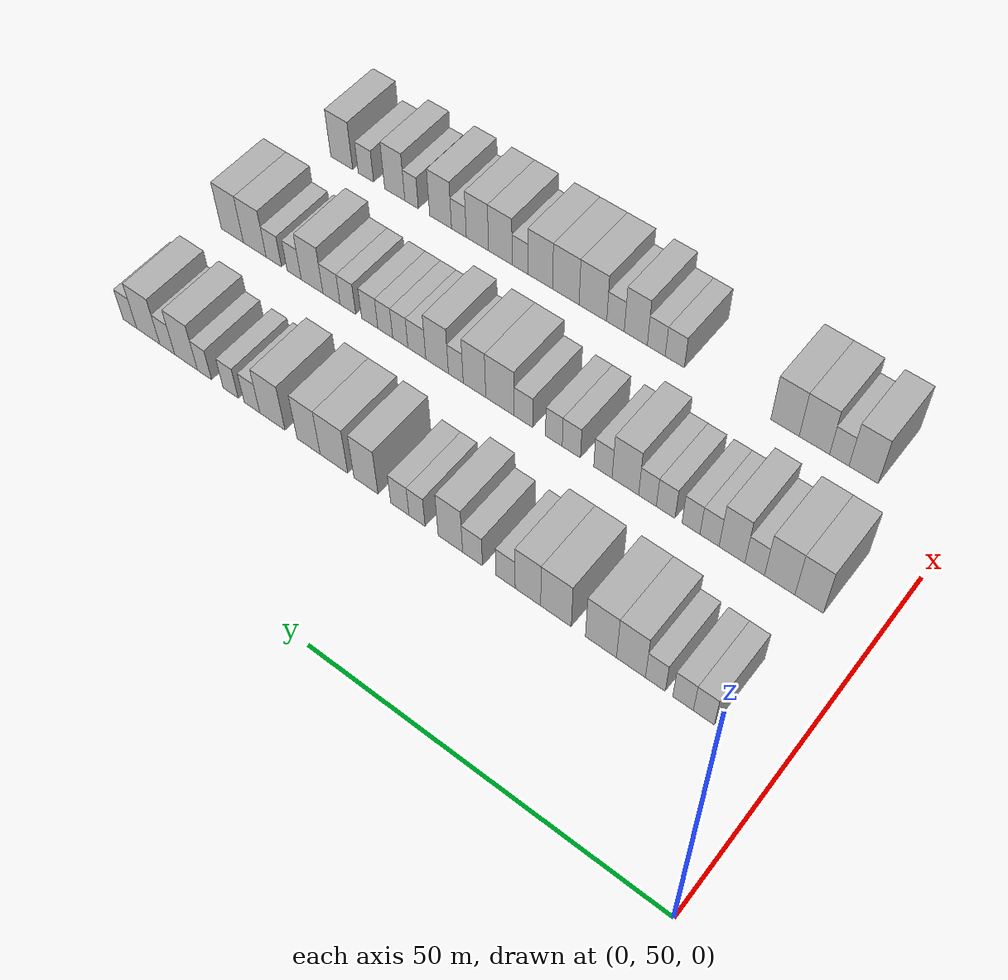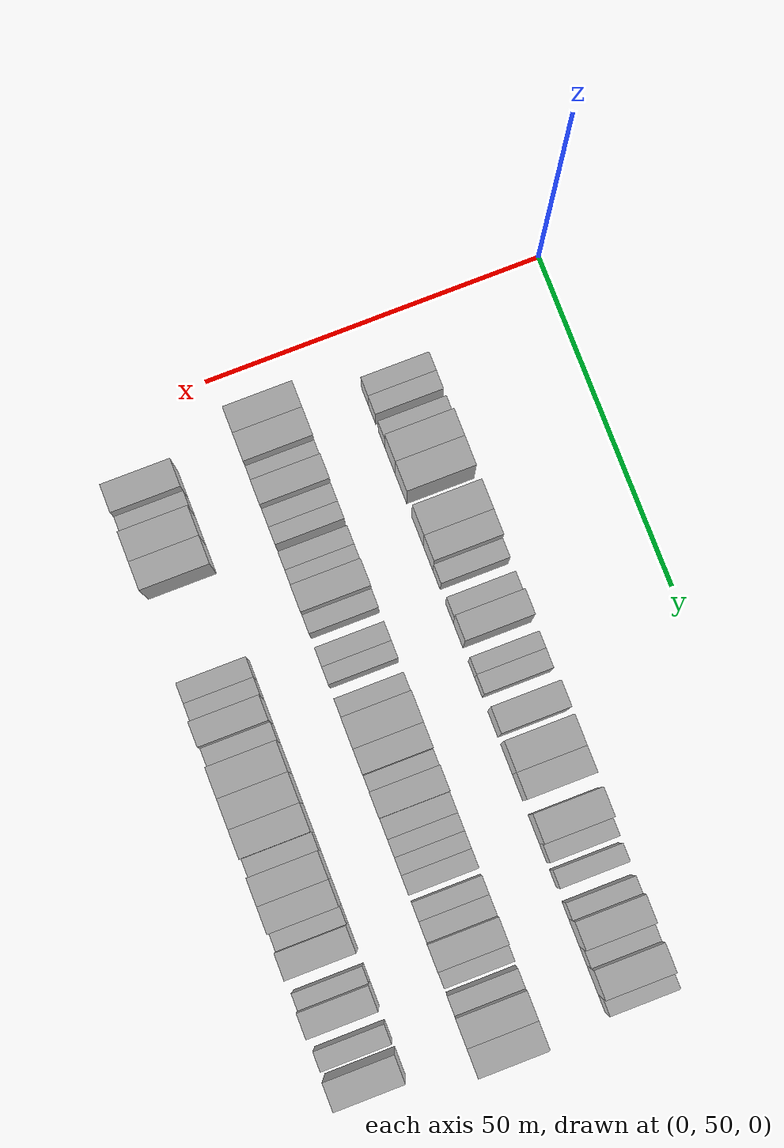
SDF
<sdf version="1.6">
 <world name="default">
  <model name="building_68">
   <static>1</static>
   <pose>25.0000 59.9690 0 0.000000 0.000000 0.000000</pose>
   <link name="link">
    <pose>0 0 3.00 0 0 0</pose>
    <collision name="collision"><geometry><box><size>10.0000 2.7717 6.0000</size></box></geometry></collision>
    <visual name="visual">
     <cast_shadows>0</cast_shadows>
     <geometry><box><size>10.0000 2.7717 6.0000</size></box></geometry>
     <material>
      <script>
       <uri>model://HANNAS_wall/materials/scripts</uri>
       <uri>model://HANNAS_wall/materials/textures</uri>
       <name>vrc/HANNAS_wall</name>
      </script>
     </material>
    </visual>
   </link>
  </model>
  <model name="building_69">
   <static>1</static>
   <pose>25.0000 62.7337 0 0.000000 0.000000 0.000000</pose>
   <link name="link">
    <pose>0 0 3.00 0 0 0</pose>
    <collision name="collision"><geometry><box><size>10.0000 2.7577 6.0000</size></box></geometry></collision>
    <visual name="visual">
     <cast_shadows>0</cast_shadows>
     <geometry><box><size>10.0000 2.7577 6.0000</size></box></geometry>
     <material>
      <script>
       <uri>model://HANNAS_wall/materials/scripts</uri>
       <uri>model://HANNAS_wall/materials/textures</uri>
       <name>vrc/HANNAS_wall</name>
      </script>
     </material>
    </visual>
   </link>
  </model>
  <model name="building_70">
   <static>1</static>
   <pose>25.0000 66.4620 0 0.000000 0.000000 0.000000</pose>
   <link name="link">
    <pose>0 0 3.00 0 0 0</pose>
    <collision name="collision"><geometry><box><size>10.0000 2.6988 6.0000</size></box></geometry></collision>
    <visual name="visual">
     <cast_shadows>0</cast_shadows>
     <geometry><box><size>10.0000 2.6988 6.0000</size></box></geometry>
     <material>
      <script>
       <uri>model://HANNAS_wall/materials/scripts</uri>
       <uri>model://HANNAS_wall/materials/textures</uri>
       <name>vrc/HANNAS_wall</name>
      </script>
     </material>
    </visual>
   </link>
  </model>
  <model name="building_71">
   <static>1</static>
   <pose>25.0000 69.7956 0 0.000000 0.000000 0.000000</pose>
   <link name="link">
    <pose>0 0 4.50 0 0 0</pose>
    <collision name="collision"><geometry><box><size>10.0000 3.9684 9.0000</size></box></geometry></collision>
    <visual name="visual">
     <cast_shadows>0</cast_shadows>
     <geometry><box><size>10.0000 3.9684 9.0000</size></box></geometry>
     <material>
      <script>
       <uri>model://HANNAS_wall/materials/scripts</uri>
       <uri>model://HANNAS_wall/materials/textures</uri>
       <name>vrc/HANNAS_wall</name>
      </script>
     </material>
    </visual>
   </link>
  </model>
  <model name="building_72">
   <static>1</static>
   <pose>25.0000 73.9458 0 0.000000 0.000000 0.000000</pose>
   <link name="link">
    <pose>0 0 4.50 0 0 0</pose>
    <collision name="collision"><geometry><box><size>10.0000 4.3321 9.0000</size></box></geometry></collision>
    <visual name="visual">
     <cast_shadows>0</cast_shadows>
     <geometry><box><size>10.0000 4.3321 9.0000</size></box></geometry>
     <material>
      <script>
       <uri>model://HANNAS_wall/materials/scripts</uri>
       <uri>model://HANNAS_wall/materials/textures</uri>
       <name>vrc/HANNAS_wall</name>
      </script>
     </material>
    </visual>
   </link>
  </model>
  <model name="building_73">
   <static>1</static>
   <pose>25.0000 80.2979 0 0.000000 0.000000 0.000000</pose>
   <link name="link">
    <pose>0 0 4.50 0 0 0</pose>
    <collision name="collision"><geometry><box><size>10.0000 4.3720 9.0000</size></box></geometry></collision>
    <visual name="visual">
     <cast_shadows>0</cast_shadows>
     <geometry><box><size>10.0000 4.3720 9.0000</size></box></geometry>
     <material>
      <script>
       <uri>model://HANNAS_wall/materials/scripts</uri>
       <uri>model://HANNAS_wall/materials/textures</uri>
       <name>vrc/HANNAS_wall</name>
      </script>
     </material>
    </visual>
   </link>
  </model>
  <model name="building_74">
   <static>1</static>
   <pose>25.0000 84.3301 0 0.000000 0.000000 0.000000</pose>
   <link name="link">
    <pose>0 0 4.50 0 0 0</pose>
    <collision name="collision"><geometry><box><size>10.0000 3.6924 9.0000</size></box></geometry></collision>
    <visual name="visual">
     <cast_shadows>0</cast_shadows>
     <geometry><box><size>10.0000 3.6924 9.0000</size></box></geometry>
     <material>
      <script>
       <uri>model://HANNAS_wall/materials/scripts</uri>
       <uri>model://HANNAS_wall/materials/textures</uri>
       <name>vrc/HANNAS_wall</name>
      </script>
     </material>
    </visual>
   </link>
  </model>
  <model name="building_75">
   <static>1</static>
   <pose>25.0000 87.5823 0 0.000000 0.000000 0.000000</pose>
   <link name="link">
    <pose>0 0 3.00 0 0 0</pose>
    <collision name="collision"><geometry><box><size>10.0000 2.8119 6.0000</size></box></geometry></collision>
    <visual name="visual">
     <cast_shadows>0</cast_shadows>
     <geometry><box><size>10.0000 2.8119 6.0000</size></box></geometry>
     <material>
      <script>
       <uri>model://HANNAS_wall/materials/scripts</uri>
       <uri>model://HANNAS_wall/materials/textures</uri>
       <name>vrc/HANNAS_wall</name>
      </script>
     </material>
    </visual>
   </link>
  </model>
  <model name="building_76">
   <static>1</static>
   <pose>25.0000 92.4771 0 0.000000 0.000000 0.000000</pose>
   <link name="link">
    <pose>0 0 3.00 0 0 0</pose>
    <collision name="collision"><geometry><box><size>10.0000 2.9778 6.0000</size></box></geometry></collision>
    <visual name="visual">
     <cast_shadows>0</cast_shadows>
     <geometry><box><size>10.0000 2.9778 6.0000</size></box></geometry>
     <material>
      <script>
       <uri>model://HANNAS_wall/materials/scripts</uri>
       <uri>model://HANNAS_wall/materials/textures</uri>
       <name>vrc/HANNAS_wall</name>
      </script>
     </material>
    </visual>
   </link>
  </model>
  <model name="building_77">
   <static>1</static>
   <pose>25.0000 95.8179 0 0.000000 0.000000 0.000000</pose>
   <link name="link">
    <pose>0 0 4.50 0 0 0</pose>
    <collision name="collision"><geometry><box><size>10.0000 3.7038 9.0000</size></box></geometry></collision>
    <visual name="visual">
     <cast_shadows>0</cast_shadows>
     <geometry><box><size>10.0000 3.7038 9.0000</size></box></geometry>
     <material>
      <script>
       <uri>model://HANNAS_wall/materials/scripts</uri>
       <uri>model://HANNAS_wall/materials/textures</uri>
       <name>vrc/HANNAS_wall</name>
      </script>
     </material>
    </visual>
   </link>
  </model>
  <model name="building_78">
   <static>1</static>
   <pose>25.0000 100.9088 0 0.000000 0.000000 0.000000</pose>
   <link name="link">
    <pose>0 0 3.00 0 0 0</pose>
    <collision name="collision"><geometry><box><size>10.0000 2.4782 6.0000</size></box></geometry></collision>
    <visual name="visual">
     <cast_shadows>0</cast_shadows>
     <geometry><box><size>10.0000 2.4782 6.0000</size></box></geometry>
     <material>
      <script>
       <uri>model://HANNAS_wall/materials/scripts</uri>
       <uri>model://HANNAS_wall/materials/textures</uri>
       <name>vrc/HANNAS_wall</name>
      </script>
     </material>
    </visual>
   </link>
  </model>
  <model name="building_79">
   <static>1</static>
   <pose>25.0000 103.5765 0 0.000000 0.000000 0.000000</pose>
   <link name="link">
    <pose>0 0 3.00 0 0 0</pose>
    <collision name="collision"><geometry><box><size>10.0000 2.8571 6.0000</size></box></geometry></collision>
    <visual name="visual">
     <cast_shadows>0</cast_shadows>
     <geometry><box><size>10.0000 2.8571 6.0000</size></box></geometry>
     <material>
      <script>
       <uri>model://HANNAS_wall/materials/scripts</uri>
       <uri>model://HANNAS_wall/materials/textures</uri>
       <name>vrc/HANNAS_wall</name>
      </script>
     </material>
    </visual>
   </link>
  </model>
  <model name="building_80">
   <static>1</static>
   <pose>25.0000 108.9148 0 0.000000 0.000000 0.000000</pose>
   <link name="link">
    <pose>0 0 4.50 0 0 0</pose>
    <collision name="collision"><geometry><box><size>10.0000 3.8195 9.0000</size></box></geometry></collision>
    <visual name="visual">
     <cast_shadows>0</cast_shadows>
     <geometry><box><size>10.0000 3.8195 9.0000</size></box></geometry>
     <material>
      <script>
       <uri>model://HANNAS_wall/materials/scripts</uri>
       <uri>model://HANNAS_wall/materials/textures</uri>
       <name>vrc/HANNAS_wall</name>
      </script>
     </material>
    </visual>
   </link>
  </model>
  <model name="building_81">
   <static>1</static>
   <pose>25.0000 114.0543 0 0.000000 0.000000 0.000000</pose>
   <link name="link">
    <pose>0 0 4.50 0 0 0</pose>
    <collision name="collision"><geometry><box><size>10.0000 4.4596 9.0000</size></box></geometry></collision>
    <visual name="visual">
     <cast_shadows>0</cast_shadows>
     <geometry><box><size>10.0000 4.4596 9.0000</size></box></geometry>
     <material>
      <script>
       <uri>model://HANNAS_wall/materials/scripts</uri>
       <uri>model://HANNAS_wall/materials/textures</uri>
       <name>vrc/HANNAS_wall</name>
      </script>
     </material>
    </visual>
   </link>
  </model>
  <model name="building_82">
   <static>1</static>
   <pose>25.0000 118.1867 0 0.000000 0.000000 0.000000</pose>
   <link name="link">
    <pose>0 0 4.50 0 0 0</pose>
    <collision name="collision"><geometry><box><size>10.0000 3.8052 9.0000</size></box></geometry></collision>
    <visual name="visual">
     <cast_shadows>0</cast_shadows>
     <geometry><box><size>10.0000 3.8052 9.0000</size></box></geometry>
     <material>
      <script>
       <uri>model://HANNAS_wall/materials/scripts</uri>
       <uri>model://HANNAS_wall/materials/textures</uri>
       <name>vrc/HANNAS_wall</name>
      </script>
     </material>
    </visual>
   </link>
  </model>
  <model name="building_83">
   <static>1</static>
   <pose>25.0000 124.2043 0 0.000000 0.000000 0.000000</pose>
   <link name="link">
    <pose>0 0 4.50 0 0 0</pose>
    <collision name="collision"><geometry><box><size>10.0000 4.2299 9.0000</size></box></geometry></collision>
    <visual name="visual">
     <cast_shadows>0</cast_shadows>
     <geometry><box><size>10.0000 4.2299 9.0000</size></box></geometry>
     <material>
      <script>
       <uri>model://HANNAS_wall/materials/scripts</uri>
       <uri>model://HANNAS_wall/materials/textures</uri>
       <name>vrc/HANNAS_wall</name>
      </script>
     </material>
    </visual>
   </link>
  </model>
  <model name="building_84">
   <static>1</static>
   <pose>25.0000 127.6479 0 0.000000 0.000000 0.000000</pose>
   <link name="link">
    <pose>0 0 3.00 0 0 0</pose>
    <collision name="collision"><geometry><box><size>10.0000 2.6574 6.0000</size></box></geometry></collision>
    <visual name="visual">
     <cast_shadows>0</cast_shadows>
     <geometry><box><size>10.0000 2.6574 6.0000</size></box></geometry>
     <material>
      <script>
       <uri>model://HANNAS_wall/materials/scripts</uri>
       <uri>model://HANNAS_wall/materials/textures</uri>
       <name>vrc/HANNAS_wall</name>
      </script>
     </material>
    </visual>
   </link>
  </model>
  <model name="building_85">
   <static>1</static>
   <pose>25.0000 131.2878 0 0.000000 0.000000 0.000000</pose>
   <link name="link">
    <pose>0 0 3.00 0 0 0</pose>
    <collision name="collision"><geometry><box><size>10.0000 2.6223 6.0000</size></box></geometry></collision>
    <visual name="visual">
     <cast_shadows>0</cast_shadows>
     <geometry><box><size>10.0000 2.6223 6.0000</size></box></geometry>
     <material>
      <script>
       <uri>model://HANNAS_wall/materials/scripts</uri>
       <uri>model://HANNAS_wall/materials/textures</uri>
       <name>vrc/HANNAS_wall</name>
      </script>
     </material>
    </visual>
   </link>
  </model>
  <model name="building_86">
   <static>1</static>
   <pose>25.0000 135.8400 0 0.000000 0.000000 0.000000</pose>
   <link name="link">
    <pose>0 0 3.00 0 0 0</pose>
    <collision name="collision"><geometry><box><size>10.0000 2.4822 6.0000</size></box></geometry></collision>
    <visual name="visual">
     <cast_shadows>0</cast_shadows>
     <geometry><box><size>10.0000 2.4822 6.0000</size></box></geometry>
     <material>
      <script>
       <uri>model://HANNAS_wall/materials/scripts</uri>
       <uri>model://HANNAS_wall/materials/textures</uri>
       <name>vrc/HANNAS_wall</name>
      </script>
     </material>
    </visual>
   </link>
  </model>
  <model name="building_87">
   <static>1</static>
   <pose>25.0000 139.0813 0 0.000000 0.000000 0.000000</pose>
   <link name="link">
    <pose>0 0 4.50 0 0 0</pose>
    <collision name="collision"><geometry><box><size>10.0000 4.0004 9.0000</size></box></geometry></collision>
    <visual name="visual">
     <cast_shadows>0</cast_shadows>
     <geometry><box><size>10.0000 4.0004 9.0000</size></box></geometry>
     <material>
      <script>
       <uri>model://HANNAS_wall/materials/scripts</uri>
       <uri>model://HANNAS_wall/materials/textures</uri>
       <name>vrc/HANNAS_wall</name>
      </script>
     </material>
    </visual>
   </link>
  </model>
  <model name="building_88">
   <static>1</static>
   <pose>25.0000 142.4182 0 0.000000 0.000000 0.000000</pose>
   <link name="link">
    <pose>0 0 3.00 0 0 0</pose>
    <collision name="collision"><geometry><box><size>10.0000 2.6733 6.0000</size></box></geometry></collision>
    <visual name="visual">
     <cast_shadows>0</cast_shadows>
     <geometry><box><size>10.0000 2.6733 6.0000</size></box></geometry>
     <material>
      <script>
       <uri>model://HANNAS_wall/materials/scripts</uri>
       <uri>model://HANNAS_wall/materials/textures</uri>
       <name>vrc/HANNAS_wall</name>
      </script>
     </material>
    </visual>
   </link>
  </model>
  <model name="building_89">
   <static>1</static>
   <pose>25.0000 145.8411 0 0.000000 0.000000 0.000000</pose>
   <link name="link">
    <pose>0 0 4.50 0 0 0</pose>
    <collision name="collision"><geometry><box><size>10.0000 4.1725 9.0000</size></box></geometry></collision>
    <visual name="visual">
     <cast_shadows>0</cast_shadows>
     <geometry><box><size>10.0000 4.1725 9.0000</size></box></geometry>
     <material>
      <script>
       <uri>model://HANNAS_wall/materials/scripts</uri>
       <uri>model://HANNAS_wall/materials/textures</uri>
       <name>vrc/HANNAS_wall</name>
      </script>
     </material>
    </visual>
   </link>
  </model>
  <model name="building_90">
   <static>1</static>
   <pose>25.0000 149.1766 0 0.000000 0.000000 0.000000</pose>
   <link name="link">
    <pose>0 0 3.00 0 0 0</pose>
    <collision name="collision"><geometry><box><size>10.0000 2.4985 6.0000</size></box></geometry></collision>
    <visual name="visual">
     <cast_shadows>0</cast_shadows>
     <geometry><box><size>10.0000 2.4985 6.0000</size></box></geometry>
     <material>
      <script>
       <uri>model://HANNAS_wall/materials/scripts</uri>
       <uri>model://HANNAS_wall/materials/textures</uri>
       <name>vrc/HANNAS_wall</name>
      </script>
     </material>
    </visual>
   </link>
  </model>
  <model name="building_181">
   <static>1</static>
   <pose>44.0000 58.3631 0 0.000000 0.000000 0.000000</pose>
   <link name="link">
    <pose>0 0 4.50 0 0 0</pose>
    <collision name="collision"><geometry><box><size>10.0000 3.8414 9.0000</size></box></geometry></collision>
    <visual name="visual">
     <cast_shadows>0</cast_shadows>
     <geometry><box><size>10.0000 3.8414 9.0000</size></box></geometry>
     <material>
      <script>
       <uri>model://HANNAS_wall/materials/scripts</uri>
       <uri>model://HANNAS_wall/materials/textures</uri>
       <name>vrc/HANNAS_wall</name>
      </script>
     </material>
    </visual>
   </link>
  </model>
  <model name="building_182">
   <static>1</static>
   <pose>44.0000 62.3609 0 0.000000 0.000000 0.000000</pose>
   <link name="link">
    <pose>0 0 4.50 0 0 0</pose>
    <collision name="collision"><geometry><box><size>10.0000 4.1542 9.0000</size></box></geometry></collision>
    <visual name="visual">
     <cast_shadows>0</cast_shadows>
     <geometry><box><size>10.0000 4.1542 9.0000</size></box></geometry>
     <material>
      <script>
       <uri>model://HANNAS_wall/materials/scripts</uri>
       <uri>model://HANNAS_wall/materials/textures</uri>
       <name>vrc/HANNAS_wall</name>
      </script>
     </material>
    </visual>
   </link>
  </model>
  <model name="building_183">
   <static>1</static>
   <pose>44.0000 65.7913 0 0.000000 0.000000 0.000000</pose>
   <link name="link">
    <pose>0 0 3.00 0 0 0</pose>
    <collision name="collision"><geometry><box><size>10.0000 2.7066 6.0000</size></box></geometry></collision>
    <visual name="visual">
     <cast_shadows>0</cast_shadows>
     <geometry><box><size>10.0000 2.7066 6.0000</size></box></geometry>
     <material>
      <script>
       <uri>model://HANNAS_wall/materials/scripts</uri>
       <uri>model://HANNAS_wall/materials/textures</uri>
       <name>vrc/HANNAS_wall</name>
      </script>
     </material>
    </visual>
   </link>
  </model>
  <model name="building_184">
   <static>1</static>
   <pose>44.0000 68.9471 0 0.000000 0.000000 0.000000</pose>
   <link name="link">
    <pose>0 0 4.50 0 0 0</pose>
    <collision name="collision"><geometry><box><size>10.0000 3.6049 9.0000</size></box></geometry></collision>
    <visual name="visual">
     <cast_shadows>0</cast_shadows>
     <geometry><box><size>10.0000 3.6049 9.0000</size></box></geometry>
     <material>
      <script>
       <uri>model://HANNAS_wall/materials/scripts</uri>
       <uri>model://HANNAS_wall/materials/textures</uri>
       <name>vrc/HANNAS_wall</name>
      </script>
     </material>
    </visual>
   </link>
  </model>
  <model name="building_185">
   <static>1</static>
   <pose>44.0000 72.0989 0 0.000000 0.000000 0.000000</pose>
   <link name="link">
    <pose>0 0 3.00 0 0 0</pose>
    <collision name="collision"><geometry><box><size>10.0000 2.6988 6.0000</size></box></geometry></collision>
    <visual name="visual">
     <cast_shadows>0</cast_shadows>
     <geometry><box><size>10.0000 2.6988 6.0000</size></box></geometry>
     <material>
      <script>
       <uri>model://HANNAS_wall/materials/scripts</uri>
       <uri>model://HANNAS_wall/materials/textures</uri>
       <name>vrc/HANNAS_wall</name>
      </script>
     </material>
    </visual>
   </link>
  </model>
  <model name="building_186">
   <static>1</static>
   <pose>44.0000 74.7346 0 0.000000 0.000000 0.000000</pose>
   <link name="link">
    <pose>0 0 3.00 0 0 0</pose>
    <collision name="collision"><geometry><box><size>10.0000 2.5727 6.0000</size></box></geometry></collision>
    <visual name="visual">
     <cast_shadows>0</cast_shadows>
     <geometry><box><size>10.0000 2.5727 6.0000</size></box></geometry>
     <material>
      <script>
       <uri>model://HANNAS_wall/materials/scripts</uri>
       <uri>model://HANNAS_wall/materials/textures</uri>
       <name>vrc/HANNAS_wall</name>
      </script>
     </material>
    </visual>
   </link>
  </model>
  <model name="building_187">
   <static>1</static>
   <pose>44.0000 78.3740 0 0.000000 0.000000 0.000000</pose>
   <link name="link">
    <pose>0 0 3.00 0 0 0</pose>
    <collision name="collision"><geometry><box><size>10.0000 2.7060 6.0000</size></box></geometry></collision>
    <visual name="visual">
     <cast_shadows>0</cast_shadows>
     <geometry><box><size>10.0000 2.7060 6.0000</size></box></geometry>
     <material>
      <script>
       <uri>model://HANNAS_wall/materials/scripts</uri>
       <uri>model://HANNAS_wall/materials/textures</uri>
       <name>vrc/HANNAS_wall</name>
      </script>
     </material>
    </visual>
   </link>
  </model>
  <model name="building_188">
   <static>1</static>
   <pose>44.0000 81.0199 0 0.000000 0.000000 0.000000</pose>
   <link name="link">
    <pose>0 0 3.00 0 0 0</pose>
    <collision name="collision"><geometry><box><size>10.0000 2.5859 6.0000</size></box></geometry></collision>
    <visual name="visual">
     <cast_shadows>0</cast_shadows>
     <geometry><box><size>10.0000 2.5859 6.0000</size></box></geometry>
     <material>
      <script>
       <uri>model://HANNAS_wall/materials/scripts</uri>
       <uri>model://HANNAS_wall/materials/textures</uri>
       <name>vrc/HANNAS_wall</name>
      </script>
     </material>
    </visual>
   </link>
  </model>
  <model name="building_189">
   <static>1</static>
   <pose>44.0000 84.2789 0 0.000000 0.000000 0.000000</pose>
   <link name="link">
    <pose>0 0 4.50 0 0 0</pose>
    <collision name="collision"><geometry><box><size>10.0000 3.9320 9.0000</size></box></geometry></collision>
    <visual name="visual">
     <cast_shadows>0</cast_shadows>
     <geometry><box><size>10.0000 3.9320 9.0000</size></box></geometry>
     <material>
      <script>
       <uri>model://HANNAS_wall/materials/scripts</uri>
       <uri>model://HANNAS_wall/materials/textures</uri>
       <name>vrc/HANNAS_wall</name>
      </script>
     </material>
    </visual>
   </link>
  </model>
  <model name="building_190">
   <static>1</static>
   <pose>44.0000 87.6145 0 0.000000 0.000000 0.000000</pose>
   <link name="link">
    <pose>0 0 3.00 0 0 0</pose>
    <collision name="collision"><geometry><box><size>10.0000 2.7392 6.0000</size></box></geometry></collision>
    <visual name="visual">
     <cast_shadows>0</cast_shadows>
     <geometry><box><size>10.0000 2.7392 6.0000</size></box></geometry>
     <material>
      <script>
       <uri>model://HANNAS_wall/materials/scripts</uri>
       <uri>model://HANNAS_wall/materials/textures</uri>
       <name>vrc/HANNAS_wall</name>
      </script>
     </material>
    </visual>
   </link>
  </model>
  <model name="building_191">
   <static>1</static>
   <pose>44.0000 92.3735 0 0.000000 0.000000 0.000000</pose>
   <link name="link">
    <pose>0 0 3.00 0 0 0</pose>
    <collision name="collision"><geometry><box><size>10.0000 2.7787 6.0000</size></box></geometry></collision>
    <visual name="visual">
     <cast_shadows>0</cast_shadows>
     <geometry><box><size>10.0000 2.7787 6.0000</size></box></geometry>
     <material>
      <script>
       <uri>model://HANNAS_wall/materials/scripts</uri>
       <uri>model://HANNAS_wall/materials/textures</uri>
       <name>vrc/HANNAS_wall</name>
      </script>
     </material>
    </visual>
   </link>
  </model>
  <model name="building_192">
   <static>1</static>
   <pose>44.0000 95.0464 0 0.000000 0.000000 0.000000</pose>
   <link name="link">
    <pose>0 0 3.00 0 0 0</pose>
    <collision name="collision"><geometry><box><size>10.0000 2.5672 6.0000</size></box></geometry></collision>
    <visual name="visual">
     <cast_shadows>0</cast_shadows>
     <geometry><box><size>10.0000 2.5672 6.0000</size></box></geometry>
     <material>
      <script>
       <uri>model://HANNAS_wall/materials/scripts</uri>
       <uri>model://HANNAS_wall/materials/textures</uri>
       <name>vrc/HANNAS_wall</name>
      </script>
     </material>
    </visual>
   </link>
  </model>
  <model name="building_193">
   <static>1</static>
   <pose>44.0000 99.7661 0 0.000000 0.000000 0.000000</pose>
   <link name="link">
    <pose>0 0 3.00 0 0 0</pose>
    <collision name="collision"><geometry><box><size>10.0000 2.8721 6.0000</size></box></geometry></collision>
    <visual name="visual">
     <cast_shadows>0</cast_shadows>
     <geometry><box><size>10.0000 2.8721 6.0000</size></box></geometry>
     <material>
      <script>
       <uri>model://HANNAS_wall/materials/scripts</uri>
       <uri>model://HANNAS_wall/materials/textures</uri>
       <name>vrc/HANNAS_wall</name>
      </script>
     </material>
    </visual>
   </link>
  </model>
  <model name="building_194">
   <static>1</static>
   <pose>44.0000 103.4498 0 0.000000 0.000000 0.000000</pose>
   <link name="link">
    <pose>0 0 4.50 0 0 0</pose>
    <collision name="collision"><geometry><box><size>10.0000 4.4953 9.0000</size></box></geometry></collision>
    <visual name="visual">
     <cast_shadows>0</cast_shadows>
     <geometry><box><size>10.0000 4.4953 9.0000</size></box></geometry>
     <material>
      <script>
       <uri>model://HANNAS_wall/materials/scripts</uri>
       <uri>model://HANNAS_wall/materials/textures</uri>
       <name>vrc/HANNAS_wall</name>
      </script>
     </material>
    </visual>
   </link>
  </model>
  <model name="building_195">
   <static>1</static>
   <pose>44.0000 107.5110 0 0.000000 0.000000 0.000000</pose>
   <link name="link">
    <pose>0 0 4.50 0 0 0</pose>
    <collision name="collision"><geometry><box><size>10.0000 3.6269 9.0000</size></box></geometry></collision>
    <visual name="visual">
     <cast_shadows>0</cast_shadows>
     <geometry><box><size>10.0000 3.6269 9.0000</size></box></geometry>
     <material>
      <script>
       <uri>model://HANNAS_wall/materials/scripts</uri>
       <uri>model://HANNAS_wall/materials/textures</uri>
       <name>vrc/HANNAS_wall</name>
      </script>
     </material>
    </visual>
   </link>
  </model>
  <model name="building_196">
   <static>1</static>
   <pose>44.0000 110.5262 0 0.000000 0.000000 0.000000</pose>
   <link name="link">
    <pose>0 0 3.00 0 0 0</pose>
    <collision name="collision"><geometry><box><size>10.0000 2.4035 6.0000</size></box></geometry></collision>
    <visual name="visual">
     <cast_shadows>0</cast_shadows>
     <geometry><box><size>10.0000 2.4035 6.0000</size></box></geometry>
     <material>
      <script>
       <uri>model://HANNAS_wall/materials/scripts</uri>
       <uri>model://HANNAS_wall/materials/textures</uri>
       <name>vrc/HANNAS_wall</name>
      </script>
     </material>
    </visual>
   </link>
  </model>
  <model name="building_197">
   <static>1</static>
   <pose>44.0000 113.5780 0 0.000000 0.000000 0.000000</pose>
   <link name="link">
    <pose>0 0 4.50 0 0 0</pose>
    <collision name="collision"><geometry><box><size>10.0000 3.7001 9.0000</size></box></geometry></collision>
    <visual name="visual">
     <cast_shadows>0</cast_shadows>
     <geometry><box><size>10.0000 3.7001 9.0000</size></box></geometry>
     <material>
      <script>
       <uri>model://HANNAS_wall/materials/scripts</uri>
       <uri>model://HANNAS_wall/materials/textures</uri>
       <name>vrc/HANNAS_wall</name>
      </script>
     </material>
    </visual>
   </link>
  </model>
  <model name="building_198">
   <static>1</static>
   <pose>44.0000 116.9120 0 0.000000 0.000000 0.000000</pose>
   <link name="link">
    <pose>0 0 3.00 0 0 0</pose>
    <collision name="collision"><geometry><box><size>10.0000 2.9679 6.0000</size></box></geometry></collision>
    <visual name="visual">
     <cast_shadows>0</cast_shadows>
     <geometry><box><size>10.0000 2.9679 6.0000</size></box></geometry>
     <material>
      <script>
       <uri>model://HANNAS_wall/materials/scripts</uri>
       <uri>model://HANNAS_wall/materials/textures</uri>
       <name>vrc/HANNAS_wall</name>
      </script>
     </material>
    </visual>
   </link>
  </model>
  <model name="building_199">
   <static>1</static>
   <pose>44.0000 119.6720 0 0.000000 0.000000 0.000000</pose>
   <link name="link">
    <pose>0 0 3.00 0 0 0</pose>
    <collision name="collision"><geometry><box><size>10.0000 2.5520 6.0000</size></box></geometry></collision>
    <visual name="visual">
     <cast_shadows>0</cast_shadows>
     <geometry><box><size>10.0000 2.5520 6.0000</size></box></geometry>
     <material>
      <script>
       <uri>model://HANNAS_wall/materials/scripts</uri>
       <uri>model://HANNAS_wall/materials/textures</uri>
       <name>vrc/HANNAS_wall</name>
      </script>
     </material>
    </visual>
   </link>
  </model>
  <model name="building_200">
   <static>1</static>
   <pose>44.0000 122.2034 0 0.000000 0.000000 0.000000</pose>
   <link name="link">
    <pose>0 0 3.00 0 0 0</pose>
    <collision name="collision"><geometry><box><size>10.0000 2.5109 6.0000</size></box></geometry></collision>
    <visual name="visual">
     <cast_shadows>0</cast_shadows>
     <geometry><box><size>10.0000 2.5109 6.0000</size></box></geometry>
     <material>
      <script>
       <uri>model://HANNAS_wall/materials/scripts</uri>
       <uri>model://HANNAS_wall/materials/textures</uri>
       <name>vrc/HANNAS_wall</name>
      </script>
     </material>
    </visual>
   </link>
  </model>
  <model name="building_201">
   <static>1</static>
   <pose>44.0000 124.8432 0 0.000000 0.000000 0.000000</pose>
   <link name="link">
    <pose>0 0 3.00 0 0 0</pose>
    <collision name="collision"><geometry><box><size>10.0000 2.7687 6.0000</size></box></geometry></collision>
    <visual name="visual">
     <cast_shadows>0</cast_shadows>
     <geometry><box><size>10.0000 2.7687 6.0000</size></box></geometry>
     <material>
      <script>
       <uri>model://HANNAS_wall/materials/scripts</uri>
       <uri>model://HANNAS_wall/materials/textures</uri>
       <name>vrc/HANNAS_wall</name>
      </script>
     </material>
    </visual>
   </link>
  </model>
  <model name="building_202">
   <static>1</static>
   <pose>44.0000 128.5750 0 0.000000 0.000000 0.000000</pose>
   <link name="link">
    <pose>0 0 3.00 0 0 0</pose>
    <collision name="collision"><geometry><box><size>10.0000 2.6949 6.0000</size></box></geometry></collision>
    <visual name="visual">
     <cast_shadows>0</cast_shadows>
     <geometry><box><size>10.0000 2.6949 6.0000</size></box></geometry>
     <material>
      <script>
       <uri>model://HANNAS_wall/materials/scripts</uri>
       <uri>model://HANNAS_wall/materials/textures</uri>
       <name>vrc/HANNAS_wall</name>
      </script>
     </material>
    </visual>
   </link>
  </model>
  <model name="building_203">
   <static>1</static>
   <pose>44.0000 131.4147 0 0.000000 0.000000 0.000000</pose>
   <link name="link">
    <pose>0 0 3.00 0 0 0</pose>
    <collision name="collision"><geometry><box><size>10.0000 2.9845 6.0000</size></box></geometry></collision>
    <visual name="visual">
     <cast_shadows>0</cast_shadows>
     <geometry><box><size>10.0000 2.9845 6.0000</size></box></geometry>
     <material>
      <script>
       <uri>model://HANNAS_wall/materials/scripts</uri>
       <uri>model://HANNAS_wall/materials/textures</uri>
       <name>vrc/HANNAS_wall</name>
      </script>
     </material>
    </visual>
   </link>
  </model>
  <model name="building_204">
   <static>1</static>
   <pose>44.0000 134.8274 0 0.000000 0.000000 0.000000</pose>
   <link name="link">
    <pose>0 0 4.50 0 0 0</pose>
    <collision name="collision"><geometry><box><size>10.0000 3.8409 9.0000</size></box></geometry></collision>
    <visual name="visual">
     <cast_shadows>0</cast_shadows>
     <geometry><box><size>10.0000 3.8409 9.0000</size></box></geometry>
     <material>
      <script>
       <uri>model://HANNAS_wall/materials/scripts</uri>
       <uri>model://HANNAS_wall/materials/textures</uri>
       <name>vrc/HANNAS_wall</name>
      </script>
     </material>
    </visual>
   </link>
  </model>
  <model name="building_205">
   <static>1</static>
   <pose>44.0000 138.0030 0 0.000000 0.000000 0.000000</pose>
   <link name="link">
    <pose>0 0 3.00 0 0 0</pose>
    <collision name="collision"><geometry><box><size>10.0000 2.5104 6.0000</size></box></geometry></collision>
    <visual name="visual">
     <cast_shadows>0</cast_shadows>
     <geometry><box><size>10.0000 2.5104 6.0000</size></box></geometry>
     <material>
      <script>
       <uri>model://HANNAS_wall/materials/scripts</uri>
       <uri>model://HANNAS_wall/materials/textures</uri>
       <name>vrc/HANNAS_wall</name>
      </script>
     </material>
    </visual>
   </link>
  </model>
  <model name="building_206">
   <static>1</static>
   <pose>44.0000 141.6461 0 0.000000 0.000000 0.000000</pose>
   <link name="link">
    <pose>0 0 3.00 0 0 0</pose>
    <collision name="collision"><geometry><box><size>10.0000 2.7757 6.0000</size></box></geometry></collision>
    <visual name="visual">
     <cast_shadows>0</cast_shadows>
     <geometry><box><size>10.0000 2.7757 6.0000</size></box></geometry>
     <material>
      <script>
       <uri>model://HANNAS_wall/materials/scripts</uri>
       <uri>model://HANNAS_wall/materials/textures</uri>
       <name>vrc/HANNAS_wall</name>
      </script>
     </material>
    </visual>
   </link>
  </model>
  <model name="building_207">
   <static>1</static>
   <pose>44.0000 145.1100 0 0.000000 0.000000 0.000000</pose>
   <link name="link">
    <pose>0 0 4.50 0 0 0</pose>
    <collision name="collision"><geometry><box><size>10.0000 4.1521 9.0000</size></box></geometry></collision>
    <visual name="visual">
     <cast_shadows>0</cast_shadows>
     <geometry><box><size>10.0000 4.1521 9.0000</size></box></geometry>
     <material>
      <script>
       <uri>model://HANNAS_wall/materials/scripts</uri>
       <uri>model://HANNAS_wall/materials/textures</uri>
       <name>vrc/HANNAS_wall</name>
      </script>
     </material>
    </visual>
   </link>
  </model>
  <model name="building_208">
   <static>1</static>
   <pose>44.0000 149.2238 0 0.000000 0.000000 0.000000</pose>
   <link name="link">
    <pose>0 0 4.50 0 0 0</pose>
    <collision name="collision"><geometry><box><size>10.0000 4.0756 9.0000</size></box></geometry></collision>
    <visual name="visual">
     <cast_shadows>0</cast_shadows>
     <geometry><box><size>10.0000 4.0756 9.0000</size></box></geometry>
     <material>
      <script>
       <uri>model://HANNAS_wall/materials/scripts</uri>
       <uri>model://HANNAS_wall/materials/textures</uri>
       <name>vrc/HANNAS_wall</name>
      </script>
     </material>
    </visual>
   </link>
  </model>
  <model name="building_308">
   <static>1</static>
   <pose>63.0000 62.5761 0 0.000000 0.000000 0.000000</pose>
   <link name="link">
    <pose>0 0 4.50 0 0 0</pose>
    <collision name="collision"><geometry><box><size>10.0000 4.0911 9.0000</size></box></geometry></collision>
    <visual name="visual">
     <cast_shadows>0</cast_shadows>
     <geometry><box><size>10.0000 4.0911 9.0000</size></box></geometry>
     <material>
      <script>
       <uri>model://HANNAS_wall/materials/scripts</uri>
       <uri>model://HANNAS_wall/materials/textures</uri>
       <name>vrc/HANNAS_wall</name>
      </script>
     </material>
    </visual>
   </link>
  </model>
  <model name="building_309">
   <static>1</static>
   <pose>63.0000 65.9929 0 0.000000 0.000000 0.000000</pose>
   <link name="link">
    <pose>0 0 3.00 0 0 0</pose>
    <collision name="collision"><geometry><box><size>10.0000 2.7425 6.0000</size></box></geometry></collision>
    <visual name="visual">
     <cast_shadows>0</cast_shadows>
     <geometry><box><size>10.0000 2.7425 6.0000</size></box></geometry>
     <material>
      <script>
       <uri>model://HANNAS_wall/materials/scripts</uri>
       <uri>model://HANNAS_wall/materials/textures</uri>
       <name>vrc/HANNAS_wall</name>
      </script>
     </material>
    </visual>
   </link>
  </model>
  <model name="building_310">
   <static>1</static>
   <pose>63.0000 69.5387 0 0.000000 0.000000 0.000000</pose>
   <link name="link">
    <pose>0 0 4.50 0 0 0</pose>
    <collision name="collision"><geometry><box><size>10.0000 4.3492 9.0000</size></box></geometry></collision>
    <visual name="visual">
     <cast_shadows>0</cast_shadows>
     <geometry><box><size>10.0000 4.3492 9.0000</size></box></geometry>
     <material>
      <script>
       <uri>model://HANNAS_wall/materials/scripts</uri>
       <uri>model://HANNAS_wall/materials/textures</uri>
       <name>vrc/HANNAS_wall</name>
      </script>
     </material>
    </visual>
   </link>
  </model>
  <model name="building_311">
   <static>1</static>
   <pose>63.0000 73.7754 0 0.000000 0.000000 0.000000</pose>
   <link name="link">
    <pose>0 0 4.50 0 0 0</pose>
    <collision name="collision"><geometry><box><size>10.0000 4.1240 9.0000</size></box></geometry></collision>
    <visual name="visual">
     <cast_shadows>0</cast_shadows>
     <geometry><box><size>10.0000 4.1240 9.0000</size></box></geometry>
     <material>
      <script>
       <uri>model://HANNAS_wall/materials/scripts</uri>
       <uri>model://HANNAS_wall/materials/textures</uri>
       <name>vrc/HANNAS_wall</name>
      </script>
     </material>
    </visual>
   </link>
  </model>
  <model name="building_312">
   <static>1</static>
   <pose>63.0000 90.2654 0 0.000000 0.000000 0.000000</pose>
   <link name="link">
    <pose>0 0 3.00 0 0 0</pose>
    <collision name="collision"><geometry><box><size>10.0000 2.9520 6.0000</size></box></geometry></collision>
    <visual name="visual">
     <cast_shadows>0</cast_shadows>
     <geometry><box><size>10.0000 2.9520 6.0000</size></box></geometry>
     <material>
      <script>
       <uri>model://HANNAS_wall/materials/scripts</uri>
       <uri>model://HANNAS_wall/materials/textures</uri>
       <name>vrc/HANNAS_wall</name>
      </script>
     </material>
    </visual>
   </link>
  </model>
  <model name="building_313">
   <static>1</static>
   <pose>63.0000 93.1368 0 0.000000 0.000000 0.000000</pose>
   <link name="link">
    <pose>0 0 3.00 0 0 0</pose>
    <collision name="collision"><geometry><box><size>10.0000 2.7907 6.0000</size></box></geometry></collision>
    <visual name="visual">
     <cast_shadows>0</cast_shadows>
     <geometry><box><size>10.0000 2.7907 6.0000</size></box></geometry>
     <material>
      <script>
       <uri>model://HANNAS_wall/materials/scripts</uri>
       <uri>model://HANNAS_wall/materials/textures</uri>
       <name>vrc/HANNAS_wall</name>
      </script>
     </material>
    </visual>
   </link>
  </model>
  <model name="building_314">
   <static>1</static>
   <pose>63.0000 96.3447 0 0.000000 0.000000 0.000000</pose>
   <link name="link">
    <pose>0 0 4.50 0 0 0</pose>
    <collision name="collision"><geometry><box><size>10.0000 3.6251 9.0000</size></box></geometry></collision>
    <visual name="visual">
     <cast_shadows>0</cast_shadows>
     <geometry><box><size>10.0000 3.6251 9.0000</size></box></geometry>
     <material>
      <script>
       <uri>model://HANNAS_wall/materials/scripts</uri>
       <uri>model://HANNAS_wall/materials/textures</uri>
       <name>vrc/HANNAS_wall</name>
      </script>
     </material>
    </visual>
   </link>
  </model>
  <model name="building_315">
   <static>1</static>
   <pose>63.0000 99.5498 0 0.000000 0.000000 0.000000</pose>
   <link name="link">
    <pose>0 0 3.00 0 0 0</pose>
    <collision name="collision"><geometry><box><size>10.0000 2.7850 6.0000</size></box></geometry></collision>
    <visual name="visual">
     <cast_shadows>0</cast_shadows>
     <geometry><box><size>10.0000 2.7850 6.0000</size></box></geometry>
     <material>
      <script>
       <uri>model://HANNAS_wall/materials/scripts</uri>
       <uri>model://HANNAS_wall/materials/textures</uri>
       <name>vrc/HANNAS_wall</name>
      </script>
     </material>
    </visual>
   </link>
  </model>
  <model name="building_316">
   <static>1</static>
   <pose>63.0000 103.1689 0 0.000000 0.000000 0.000000</pose>
   <link name="link">
    <pose>0 0 4.50 0 0 0</pose>
    <collision name="collision"><geometry><box><size>10.0000 4.4532 9.0000</size></box></geometry></collision>
    <visual name="visual">
     <cast_shadows>0</cast_shadows>
     <geometry><box><size>10.0000 4.4532 9.0000</size></box></geometry>
     <material>
      <script>
       <uri>model://HANNAS_wall/materials/scripts</uri>
       <uri>model://HANNAS_wall/materials/textures</uri>
       <name>vrc/HANNAS_wall</name>
      </script>
     </material>
    </visual>
   </link>
  </model>
  <model name="building_317">
   <static>1</static>
   <pose>63.0000 107.5644 0 0.000000 0.000000 0.000000</pose>
   <link name="link">
    <pose>0 0 4.50 0 0 0</pose>
    <collision name="collision"><geometry><box><size>10.0000 4.3378 9.0000</size></box></geometry></collision>
    <visual name="visual">
     <cast_shadows>0</cast_shadows>
     <geometry><box><size>10.0000 4.3378 9.0000</size></box></geometry>
     <material>
      <script>
       <uri>model://HANNAS_wall/materials/scripts</uri>
       <uri>model://HANNAS_wall/materials/textures</uri>
       <name>vrc/HANNAS_wall</name>
      </script>
     </material>
    </visual>
   </link>
  </model>
  <model name="building_318">
   <static>1</static>
   <pose>63.0000 111.7806 0 0.000000 0.000000 0.000000</pose>
   <link name="link">
    <pose>0 0 4.50 0 0 0</pose>
    <collision name="collision"><geometry><box><size>10.0000 4.0946 9.0000</size></box></geometry></collision>
    <visual name="visual">
     <cast_shadows>0</cast_shadows>
     <geometry><box><size>10.0000 4.0946 9.0000</size></box></geometry>
     <material>
      <script>
       <uri>model://HANNAS_wall/materials/scripts</uri>
       <uri>model://HANNAS_wall/materials/textures</uri>
       <name>vrc/HANNAS_wall</name>
      </script>
     </material>
    </visual>
   </link>
  </model>
  <model name="building_319">
   <static>1</static>
   <pose>63.0000 115.1292 0 0.000000 0.000000 0.000000</pose>
   <link name="link">
    <pose>0 0 3.00 0 0 0</pose>
    <collision name="collision"><geometry><box><size>10.0000 2.6026 6.0000</size></box></geometry></collision>
    <visual name="visual">
     <cast_shadows>0</cast_shadows>
     <geometry><box><size>10.0000 2.6026 6.0000</size></box></geometry>
     <material>
      <script>
       <uri>model://HANNAS_wall/materials/scripts</uri>
       <uri>model://HANNAS_wall/materials/textures</uri>
       <name>vrc/HANNAS_wall</name>
      </script>
     </material>
    </visual>
   </link>
  </model>
  <model name="building_320">
   <static>1</static>
   <pose>63.0000 118.4221 0 0.000000 0.000000 0.000000</pose>
   <link name="link">
    <pose>0 0 4.50 0 0 0</pose>
    <collision name="collision"><geometry><box><size>10.0000 3.9832 9.0000</size></box></geometry></collision>
    <visual name="visual">
     <cast_shadows>0</cast_shadows>
     <geometry><box><size>10.0000 3.9832 9.0000</size></box></geometry>
     <material>
      <script>
       <uri>model://HANNAS_wall/materials/scripts</uri>
       <uri>model://HANNAS_wall/materials/textures</uri>
       <name>vrc/HANNAS_wall</name>
      </script>
     </material>
    </visual>
   </link>
  </model>
  <model name="building_321">
   <static>1</static>
   <pose>63.0000 122.3244 0 0.000000 0.000000 0.000000</pose>
   <link name="link">
    <pose>0 0 4.50 0 0 0</pose>
    <collision name="collision"><geometry><box><size>10.0000 3.8216 9.0000</size></box></geometry></collision>
    <visual name="visual">
     <cast_shadows>0</cast_shadows>
     <geometry><box><size>10.0000 3.8216 9.0000</size></box></geometry>
     <material>
      <script>
       <uri>model://HANNAS_wall/materials/scripts</uri>
       <uri>model://HANNAS_wall/materials/textures</uri>
       <name>vrc/HANNAS_wall</name>
      </script>
     </material>
    </visual>
   </link>
  </model>
  <model name="building_322">
   <static>1</static>
   <pose>63.0000 125.5187 0 0.000000 0.000000 0.000000</pose>
   <link name="link">
    <pose>0 0 3.00 0 0 0</pose>
    <collision name="collision"><geometry><box><size>10.0000 2.5669 6.0000</size></box></geometry></collision>
    <visual name="visual">
     <cast_shadows>0</cast_shadows>
     <geometry><box><size>10.0000 2.5669 6.0000</size></box></geometry>
     <material>
      <script>
       <uri>model://HANNAS_wall/materials/scripts</uri>
       <uri>model://HANNAS_wall/materials/textures</uri>
       <name>vrc/HANNAS_wall</name>
      </script>
     </material>
    </visual>
   </link>
  </model>
  <model name="building_323">
   <static>1</static>
   <pose>63.0000 128.7148 0 0.000000 0.000000 0.000000</pose>
   <link name="link">
    <pose>0 0 4.50 0 0 0</pose>
    <collision name="collision"><geometry><box><size>10.0000 3.8253 9.0000</size></box></geometry></collision>
    <visual name="visual">
     <cast_shadows>0</cast_shadows>
     <geometry><box><size>10.0000 3.8253 9.0000</size></box></geometry>
     <material>
      <script>
       <uri>model://HANNAS_wall/materials/scripts</uri>
       <uri>model://HANNAS_wall/materials/textures</uri>
       <name>vrc/HANNAS_wall</name>
      </script>
     </material>
    </visual>
   </link>
  </model>
  <model name="building_324">
   <static>1</static>
   <pose>63.0000 133.8307 0 0.000000 0.000000 0.000000</pose>
   <link name="link">
    <pose>0 0 3.00 0 0 0</pose>
    <collision name="collision"><geometry><box><size>10.0000 2.4066 6.0000</size></box></geometry></collision>
    <visual name="visual">
     <cast_shadows>0</cast_shadows>
     <geometry><box><size>10.0000 2.4066 6.0000</size></box></geometry>
     <material>
      <script>
       <uri>model://HANNAS_wall/materials/scripts</uri>
       <uri>model://HANNAS_wall/materials/textures</uri>
       <name>vrc/HANNAS_wall</name>
      </script>
     </material>
    </visual>
   </link>
  </model>
  <model name="building_325">
   <static>1</static>
   <pose>63.0000 136.8424 0 0.000000 0.000000 0.000000</pose>
   <link name="link">
    <pose>0 0 4.50 0 0 0</pose>
    <collision name="collision"><geometry><box><size>10.0000 3.6169 9.0000</size></box></geometry></collision>
    <visual name="visual">
     <cast_shadows>0</cast_shadows>
     <geometry><box><size>10.0000 3.6169 9.0000</size></box></geometry>
     <material>
      <script>
       <uri>model://HANNAS_wall/materials/scripts</uri>
       <uri>model://HANNAS_wall/materials/textures</uri>
       <name>vrc/HANNAS_wall</name>
      </script>
     </material>
    </visual>
   </link>
  </model>
  <model name="building_326">
   <static>1</static>
   <pose>63.0000 142.0622 0 0.000000 0.000000 0.000000</pose>
   <link name="link">
    <pose>0 0 3.00 0 0 0</pose>
    <collision name="collision"><geometry><box><size>10.0000 2.8227 6.0000</size></box></geometry></collision>
    <visual name="visual">
     <cast_shadows>0</cast_shadows>
     <geometry><box><size>10.0000 2.8227 6.0000</size></box></geometry>
     <material>
      <script>
       <uri>model://HANNAS_wall/materials/scripts</uri>
       <uri>model://HANNAS_wall/materials/textures</uri>
       <name>vrc/HANNAS_wall</name>
      </script>
     </material>
    </visual>
   </link>
  </model>
  <model name="building_327">
   <static>1</static>
   <pose>63.0000 146.4926 0 0.000000 0.000000 0.000000</pose>
   <link name="link">
    <pose>0 0 4.50 0 0 0</pose>
    <collision name="collision"><geometry><box><size>10.0000 4.0381 9.0000</size></box></geometry></collision>
    <visual name="visual">
     <cast_shadows>0</cast_shadows>
     <geometry><box><size>10.0000 4.0381 9.0000</size></box></geometry>
     <material>
      <script>
       <uri>model://HANNAS_wall/materials/scripts</uri>
       <uri>model://HANNAS_wall/materials/textures</uri>
       <name>vrc/HANNAS_wall</name>
      </script>
     </material>
    </visual>
   </link>
  </model>
 </world>
</sdf>
